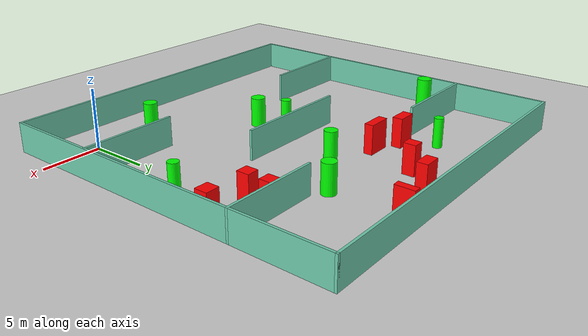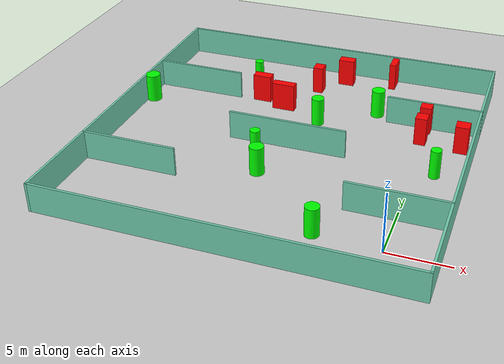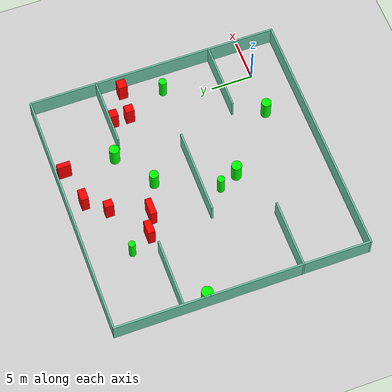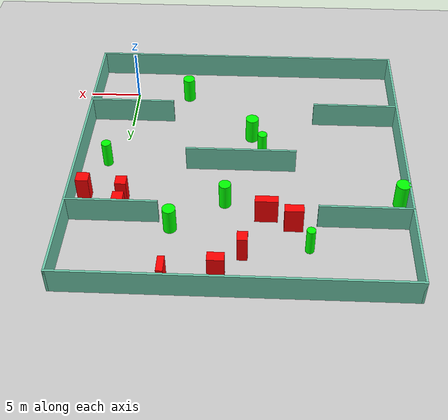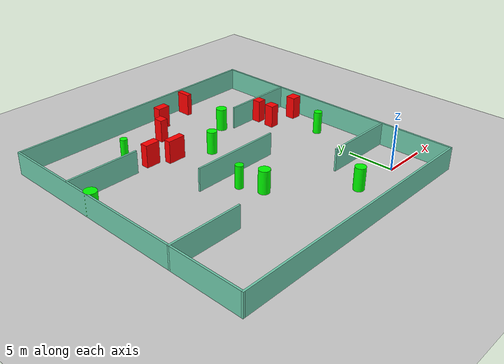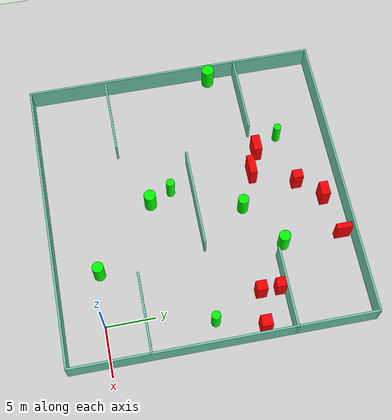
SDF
<sdf version="1.7">
 <world name="default">
  <light name="sun" type="directional">
   <pose>0 0 10 0 -0 0</pose>
   <diffuse>0.8 0.8 0.8 1</diffuse>
   <specular>0.2 0.2 0.2 1</specular>
   <attenuation>
    <range>1000</range>
    <constant>0.9</constant>
    <linear>0.01</linear>
    <quadratic>0.001</quadratic>
   </attenuation>
   <direction>-0.5 0.1 -0.9</direction>
   <spot><inner_angle>0</inner_angle><outer_angle>0</outer_angle><falloff>0</falloff></spot>
  </light>
  <model name="ground_plane">
   <static>1</static>
   <link name="link">
    <collision name="collision">
     <geometry><plane><normal>0 0 1</normal><size>100 100</size></plane></geometry>
     <surface>
      <contact><collide_bitmask>65535</collide_bitmask></contact>
      <friction><ode><mu>100</mu><mu2>50</mu2></ode></friction>
     </surface>
    </collision>
    <visual name="visual">
     <cast_shadows>0</cast_shadows>
     <geometry><plane><normal>0 0 1</normal><size>100 100</size></plane></geometry>
     <material>
      <script><uri>file://media/materials/scripts/gazebo.material</uri><name>Gazebo/Grey</name></script>
     </material>
    </visual>
   </link>
  </model>
  <gravity>0 0 -9.8</gravity>
  <magnetic_field>6e-06 2.3e-05 -4.2e-05</magnetic_field>
  <atmosphere type="adiabatic"/>
  <physics type="ode">
   <max_step_size>0.001</max_step_size>
   <real_time_factor>1</real_time_factor>
   <real_time_update_rate>1000</real_time_update_rate>
  </physics>
  <scene><ambient>0.4 0.4 0.4 1</ambient><background>0.7 0.7 0.7 1</background><shadows>1</shadows></scene>
  <spherical_coordinates>
   <surface_model>EARTH_WGS84</surface_model>
   <latitude_deg>0</latitude_deg>
   <longitude_deg>0</longitude_deg>
   <elevation>0</elevation>
   <heading_deg>0</heading_deg>
  </spherical_coordinates>
  <model name="my_base_walls">
   <link name="Wall_10">
    <collision name="Wall_10_Collision">
     <geometry><box><size>8.2 0.2 2.5</size></box></geometry>
     <pose>0 0 1.25 0 -0 0</pose>
    </collision>
    <visual name="Wall_10_Visual">
     <pose>0 0 1.25 0 -0 0</pose>
     <geometry><box><size>8.2 0.2 2.5</size></box></geometry>
     <material>
      <script><uri>file://media/materials/scripts/gazebo.material</uri><name>Gazebo/Grey</name></script>
      <ambient>0.435294 0.796078 0.67451 1</ambient>
     </material>
     <meta><layer>0</layer></meta>
    </visual>
    <pose>-11 -7 0 0 -0 0</pose>
   </link>
   <link name="Wall_12">
    <collision name="Wall_12_Collision">
     <geometry><box><size>8.2 0.2 2.5</size></box></geometry>
     <pose>0 0 1.25 0 -0 0</pose>
    </collision>
    <visual name="Wall_12_Visual">
     <pose>0 0 1.25 0 -0 0</pose>
     <geometry><box><size>8.2 0.2 2.5</size></box></geometry>
     <material>
      <script><uri>file://media/materials/scripts/gazebo.material</uri><name>Gazebo/Grey</name></script>
      <ambient>0.435294 0.796078 0.67451 1</ambient>
     </material>
     <meta><layer>0</layer></meta>
    </visual>
    <pose>-11 7 0 0 -0 0</pose>
   </link>
   <link name="Wall_14">
    <collision name="Wall_14_Collision">
     <geometry><box><size>8.2 0.2 2.5</size></box></geometry>
     <pose>0 0 1.25 0 -0 0</pose>
    </collision>
    <visual name="Wall_14_Visual">
     <pose>0 0 1.25 0 -0 0</pose>
     <geometry><box><size>8.2 0.2 2.5</size></box></geometry>
     <material>
      <script><uri>file://media/materials/scripts/gazebo.material</uri><name>Gazebo/Grey</name></script>
      <ambient>0.435294 0.796078 0.67451 1</ambient>
     </material>
     <meta><layer>0</layer></meta>
    </visual>
    <pose>11 7 0 0 -0 3.14159</pose>
   </link>
   <link name="Wall_16">
    <collision name="Wall_16_Collision">
     <geometry><box><size>10.2 0.2 2.5</size></box></geometry>
     <pose>0 0 1.25 0 -0 0</pose>
    </collision>
    <visual name="Wall_16_Visual">
     <pose>0 0 1.25 0 -0 0</pose>
     <geometry><box><size>10.2 0.2 2.5</size></box></geometry>
     <material>
      <script><uri>file://media/materials/scripts/gazebo.material</uri><name>Gazebo/Grey</name></script>
      <ambient>0.435294 0.796078 0.67451 1</ambient>
     </material>
     <meta><layer>0</layer></meta>
    </visual>
    <pose>0 0 0 0 -0 3.14159</pose>
   </link>
   <link name="Wall_2">
    <collision name="Wall_2_Collision">
     <geometry><box><size>30.2 0.2 2.5</size></box></geometry>
     <pose>0 0 1.25 0 -0 0</pose>
    </collision>
    <visual name="Wall_2_Visual">
     <pose>0 0 1.25 0 -0 0</pose>
     <geometry><box><size>30.2 0.2 2.5</size></box></geometry>
     <material>
      <script><uri>file://media/materials/scripts/gazebo.material</uri><name>Gazebo/Grey</name></script>
      <ambient>0.435294 0.796078 0.67451 1</ambient>
     </material>
     <meta><layer>0</layer></meta>
    </visual>
    <pose>0 -15 0 0 -0 3.14159</pose>
   </link>
   <link name="Wall_3">
    <collision name="Wall_3_Collision">
     <geometry><box><size>30.2 0.2 2.5</size></box></geometry>
     <pose>0 0 1.25 0 -0 0</pose>
    </collision>
    <visual name="Wall_3_Visual">
     <pose>0 0 1.25 0 -0 0</pose>
     <geometry><box><size>30.2 0.2 2.5</size></box></geometry>
     <material>
      <script><uri>file://media/materials/scripts/gazebo.material</uri><name>Gazebo/Grey</name></script>
      <ambient>0.435294 0.796078 0.67451 1</ambient>
     </material>
     <meta><layer>0</layer></meta>
    </visual>
    <pose>-15 0 0 0 -0 1.5708</pose>
   </link>
   <link name="Wall_4">
    <collision name="Wall_4_Collision">
     <geometry><box><size>30.2 0.2 2.5</size></box></geometry>
     <pose>0 0 1.25 0 -0 0</pose>
    </collision>
    <visual name="Wall_4_Visual">
     <pose>0 0 1.25 0 -0 0</pose>
     <geometry><box><size>30.2 0.2 2.5</size></box></geometry>
     <material>
      <script><uri>file://media/materials/scripts/gazebo.material</uri><name>Gazebo/Grey</name></script>
      <ambient>0.435294 0.796078 0.67451 1</ambient>
     </material>
     <meta><layer>0</layer></meta>
    </visual>
    <pose>0 15 0 0 -0 0</pose>
   </link>
   <link name="Wall_6">
    <collision name="Wall_6_Collision">
     <geometry><box><size>30.2 0.2 2.5</size></box></geometry>
     <pose>0 0 1.25 0 -0 0</pose>
    </collision>
    <visual name="Wall_6_Visual">
     <pose>0 0 1.25 0 -0 0</pose>
     <geometry><box><size>30.2 0.2 2.5</size></box></geometry>
     <material>
      <script><uri>file://media/materials/scripts/gazebo.material</uri><name>Gazebo/Grey</name></script>
      <ambient>0.435294 0.796078 0.67451 1</ambient>
     </material>
     <meta><layer>0</layer></meta>
    </visual>
    <pose>15 0 0 0 -0 1.5708</pose>
   </link>
   <link name="Wall_8">
    <collision name="Wall_8_Collision">
     <geometry><box><size>8.2 0.2 2.5</size></box></geometry>
     <pose>0 0 1.25 0 -0 0</pose>
    </collision>
    <visual name="Wall_8_Visual">
     <pose>0 0 1.25 0 -0 0</pose>
     <geometry><box><size>8.2 0.2 2.5</size></box></geometry>
     <material>
      <script><uri>file://media/materials/scripts/gazebo.material</uri><name>Gazebo/Grey</name></script>
      <ambient>0.435294 0.796078 0.67451 1</ambient>
     </material>
     <meta><layer>0</layer></meta>
    </visual>
    <pose>11 -7 0 0 -0 3.14159</pose>
   </link>
   <static>1</static>
   <pose>-11 11 0 0 -0 0</pose>
  </model>
  <model name="cylinder1">
   <static>1</static>
   <link name="link">
    <inertial>
     <mass>1</mass>
     <inertia><ixx>0.5</ixx><ixy>0</ixy><ixz>0</ixz><iyy>0.5</iyy><iyz>0</iyz><izz>1</izz></inertia>
    </inertial>
    <collision name="collision">
     <geometry><cylinder><radius>0.6533027337788476</radius><length>2.5</length></cylinder></geometry>
    </collision>
    <visual name="visual">
     <geometry><cylinder><radius>0.6533027337788476</radius><length>2.5</length></cylinder></geometry>
     <material>
      <ambient>0 1 0 1</ambient>
      <diffuse>0 1 0 1</diffuse>
      <specular>0.1 0.1 0.1 1</specular>
      <emissive>0 0 0 0</emissive>
     </material>
    </visual>
   </link>
   <pose>-25.448205058486206 15.086655101425148 1.25 0 0 0</pose>
  </model>
  <model name="cylinder2">
   <static>1</static>
   <link name="link">
    <inertial>
     <mass>1</mass>
     <inertia><ixx>0.5</ixx><ixy>0</ixy><ixz>0</ixz><iyy>0.5</iyy><iyz>0</iyz><izz>1</izz></inertia>
    </inertial>
    <collision name="collision">
     <geometry><cylinder><radius>0.6058928162535919</radius><length>2.5</length></cylinder></geometry>
    </collision>
    <visual name="visual">
     <geometry><cylinder><radius>0.6058928162535919</radius><length>2.5</length></cylinder></geometry>
     <material>
      <ambient>0 1 0 1</ambient>
      <diffuse>0 1 0 1</diffuse>
      <specular>0.1 0.1 0.1 1</specular>
      <emissive>0 0 0 0</emissive>
     </material>
    </visual>
   </link>
   <pose>-11.926054605159825 6.486087776040616 1.25 0 0 0</pose>
  </model>
  <model name="cylinder3">
   <static>1</static>
   <link name="link">
    <inertial>
     <mass>1</mass>
     <inertia><ixx>0.5</ixx><ixy>0</ixy><ixz>0</ixz><iyy>0.5</iyy><iyz>0</iyz><izz>1</izz></inertia>
    </inertial>
    <collision name="collision">
     <geometry><cylinder><radius>0.58334786820027</radius><length>2.5</length></cylinder></geometry>
    </collision>
    <visual name="visual">
     <geometry><cylinder><radius>0.58334786820027</radius><length>2.5</length></cylinder></geometry>
     <material>
      <ambient>0 1 0 1</ambient>
      <diffuse>0 1 0 1</diffuse>
      <specular>0.1 0.1 0.1 1</specular>
      <emissive>0 0 0 0</emissive>
     </material>
    </visual>
   </link>
   <pose>-5.138920749601841 18.866109907880563 1.25 0 0 0</pose>
  </model>
  <model name="cylinder4">
   <static>1</static>
   <link name="link">
    <inertial>
     <mass>1</mass>
     <inertia><ixx>0.5</ixx><ixy>0</ixy><ixz>0</ixz><iyy>0.5</iyy><iyz>0</iyz><izz>1</izz></inertia>
    </inertial>
    <collision name="collision">
     <geometry><cylinder><radius>0.5744135334278461</radius><length>2.5</length></cylinder></geometry>
    </collision>
    <visual name="visual">
     <geometry><cylinder><radius>0.5744135334278461</radius><length>2.5</length></cylinder></geometry>
     <material>
      <ambient>0 1 0 1</ambient>
      <diffuse>0 1 0 1</diffuse>
      <specular>0.1 0.1 0.1 1</specular>
      <emissive>0 0 0 0</emissive>
     </material>
    </visual>
   </link>
   <pose>-5.302772853115062 0.2668515234458573 1.25 0 0 0</pose>
  </model>
  <model name="cylinder5">
   <static>1</static>
   <link name="link">
    <inertial>
     <mass>1</mass>
     <inertia><ixx>0.5</ixx><ixy>0</ixy><ixz>0</ixz><iyy>0.5</iyy><iyz>0</iyz><izz>1</izz></inertia>
    </inertial>
    <collision name="collision">
     <geometry><cylinder><radius>0.5399190083976072</radius><length>2.5</length></cylinder></geometry>
    </collision>
    <visual name="visual">
     <geometry><cylinder><radius>0.5399190083976072</radius><length>2.5</length></cylinder></geometry>
     <material>
      <ambient>0 1 0 1</ambient>
      <diffuse>0 1 0 1</diffuse>
      <specular>0.1 0.1 0.1 1</specular>
      <emissive>0 0 0 0</emissive>
     </material>
    </visual>
   </link>
   <pose>-9.763584516298916 15.688539947157182 1.25 0 0 0</pose>
  </model>
  <model name="cylinder6">
   <static>1</static>
   <link name="link">
    <inertial>
     <mass>1</mass>
     <inertia><ixx>0.5</ixx><ixy>0</ixy><ixz>0</ixz><iyy>0.5</iyy><iyz>0</iyz><izz>1</izz></inertia>
    </inertial>
    <collision name="collision">
     <geometry><cylinder><radius>0.3884676934568455</radius><length>2.5</length></cylinder></geometry>
    </collision>
    <visual name="visual">
     <geometry><cylinder><radius>0.3884676934568455</radius><length>2.5</length></cylinder></geometry>
     <material>
      <ambient>0 1 0 1</ambient>
      <diffuse>0 1 0 1</diffuse>
      <specular>0.1 0.1 0.1 1</specular>
      <emissive>0 0 0 0</emissive>
     </material>
    </visual>
   </link>
   <pose>-17.194579776220706 20.879874217648407 1.25 0 0 0</pose>
  </model>
  <model name="cylinder7">
   <static>1</static>
   <link name="link">
    <inertial>
     <mass>1</mass>
     <inertia><ixx>0.5</ixx><ixy>0</ixy><ixz>0</ixz><iyy>0.5</iyy><iyz>0</iyz><izz>1</izz></inertia>
    </inertial>
    <collision name="collision">
     <geometry><cylinder><radius>0.4287755350695039</radius><length>2.5</length></cylinder></geometry>
    </collision>
    <visual name="visual">
     <geometry><cylinder><radius>0.4287755350695039</radius><length>2.5</length></cylinder></geometry>
     <material>
      <ambient>0 1 0 1</ambient>
      <diffuse>0 1 0 1</diffuse>
      <specular>0.1 0.1 0.1 1</specular>
      <emissive>0 0 0 0</emissive>
     </material>
    </visual>
   </link>
   <pose>-12.940253441555752 8.763392495671123 1.25 0 0 0</pose>
  </model>
  <model name="cylinder8">
   <static>1</static>
   <link name="link">
    <inertial>
     <mass>1</mass>
     <inertia><ixx>0.5</ixx><ixy>0</ixy><ixz>0</ixz><iyy>0.5</iyy><iyz>0</iyz><izz>1</izz></inertia>
    </inertial>
    <collision name="collision">
     <geometry><cylinder><radius>0.44759128488542066</radius><length>2.5</length></cylinder></geometry>
    </collision>
    <visual name="visual">
     <geometry><cylinder><radius>0.44759128488542066</radius><length>2.5</length></cylinder></geometry>
     <material>
      <ambient>0 1 0 1</ambient>
      <diffuse>0 1 0 1</diffuse>
      <specular>0.1 0.1 0.1 1</specular>
      <emissive>0 0 0 0</emissive>
     </material>
    </visual>
   </link>
   <pose>1.5568881610158911 10.612946044833887 1.25 0 0 0</pose>
  </model>
  <model name="box1">
   <static>1</static>
   <link name="link">
    <inertial>
     <mass>1</mass>
     <inertia><ixx>0.083</ixx><ixy>0</ixy><ixz>0</ixz><iyy>0.083</iyy><iyz>0</iyz><izz>0.083</izz></inertia>
    </inertial>
    <collision name="collision">
     <geometry><box><size>0.9058664279520423 1.0232779019637794 2.5</size></box></geometry>
    </collision>
    <visual name="visual">
     <geometry><box><size>0.9058664279520423 1.0232779019637794 2.5</size></box></geometry>
     <material>
      <ambient>1 0 0 1</ambient>
      <diffuse>1 0 0 1</diffuse>
      <specular>0.1 0.1 0.1 1</specular>
      <emissive>0 0 0 0</emissive>
     </material>
    </visual>
    <sensor name="my_contact" type="contact">
     <contact><collision>box_collision</collision><topic>__default_topic__</topic></contact>
    </sensor>
   </link>
   <pose>-11.509161595123036 21.70869587742245 1.25 0 0 0</pose>
  </model>
  <model name="box2">
   <static>1</static>
   <link name="link">
    <inertial>
     <mass>1</mass>
     <inertia><ixx>0.083</ixx><ixy>0</ixy><ixz>0</ixz><iyy>0.083</iyy><iyz>0</iyz><izz>0.083</izz></inertia>
    </inertial>
    <collision name="collision">
     <geometry><box><size>1.440560110507452 0.8914409115062729 2.5</size></box></geometry>
    </collision>
    <visual name="visual">
     <geometry><box><size>1.440560110507452 0.8914409115062729 2.5</size></box></geometry>
     <material>
      <ambient>1 0 0 1</ambient>
      <diffuse>1 0 0 1</diffuse>
      <specular>0.1 0.1 0.1 1</specular>
      <emissive>0 0 0 0</emissive>
     </material>
    </visual>
    <sensor name="my_contact" type="contact">
     <contact><collision>box_collision</collision><topic>__default_topic__</topic></contact>
    </sensor>
   </link>
   <pose>-9.43945123372964 24.01085801498678 1.25 0 0 0</pose>
  </model>
  <model name="box3">
   <static>1</static>
   <link name="link">
    <inertial>
     <mass>1</mass>
     <inertia><ixx>0.083</ixx><ixy>0</ixy><ixz>0</ixz><iyy>0.083</iyy><iyz>0</iyz><izz>0.083</izz></inertia>
    </inertial>
    <collision name="collision">
     <geometry><box><size>0.5837198906968059 1.5793066356258032 2.5</size></box></geometry>
    </collision>
    <visual name="visual">
     <geometry><box><size>0.5837198906968059 1.5793066356258032 2.5</size></box></geometry>
     <material>
      <ambient>1 0 0 1</ambient>
      <diffuse>1 0 0 1</diffuse>
      <specular>0.1 0.1 0.1 1</specular>
      <emissive>0 0 0 0</emissive>
     </material>
    </visual>
    <sensor name="my_contact" type="contact">
     <contact><collision>box_collision</collision><topic>__default_topic__</topic></contact>
    </sensor>
   </link>
   <pose>-5.0926078693153105 24.919518783954064 1.25 0 0 0</pose>
  </model>
  <model name="box4">
   <static>1</static>
   <link name="link">
    <inertial>
     <mass>1</mass>
     <inertia><ixx>0.083</ixx><ixy>0</ixy><ixz>0</ixz><iyy>0.083</iyy><iyz>0</iyz><izz>0.083</izz></inertia>
    </inertial>
    <collision name="collision">
     <geometry><box><size>1.6590662975299324 0.8477846808737197 2.5</size></box></geometry>
    </collision>
    <visual name="visual">
     <geometry><box><size>1.6590662975299324 0.8477846808737197 2.5</size></box></geometry>
     <material>
      <ambient>1 0 0 1</ambient>
      <diffuse>1 0 0 1</diffuse>
      <specular>0.1 0.1 0.1 1</specular>
      <emissive>0 0 0 0</emissive>
     </material>
    </visual>
    <sensor name="my_contact" type="contact">
     <contact><collision>box_collision</collision><topic>__default_topic__</topic></contact>
    </sensor>
   </link>
   <pose>-15.83622050482975 18.367426062721318 1.25 0 0 0</pose>
  </model>
  <model name="box5">
   <static>1</static>
   <link name="link">
    <inertial>
     <mass>1</mass>
     <inertia><ixx>0.083</ixx><ixy>0</ixy><ixz>0</ixz><iyy>0.083</iyy><iyz>0</iyz><izz>0.083</izz></inertia>
    </inertial>
    <collision name="collision">
     <geometry><box><size>2.036042508320442 0.7411712338610346 2.5</size></box></geometry>
    </collision>
    <visual name="visual">
     <geometry><box><size>2.036042508320442 0.7411712338610346 2.5</size></box></geometry>
     <material>
      <ambient>1 0 0 1</ambient>
      <diffuse>1 0 0 1</diffuse>
      <specular>0.1 0.1 0.1 1</specular>
      <emissive>0 0 0 0</emissive>
     </material>
    </visual>
    <sensor name="my_contact" type="contact">
     <contact><collision>box_collision</collision><topic>__default_topic__</topic></contact>
    </sensor>
   </link>
   <pose>-13.458882704324783 17.357726399131284 1.25 0 0 0</pose>
  </model>
  <model name="box6">
   <static>1</static>
   <link name="link">
    <inertial>
     <mass>1</mass>
     <inertia><ixx>0.083</ixx><ixy>0</ixy><ixz>0</ixz><iyy>0.083</iyy><iyz>0</iyz><izz>0.083</izz></inertia>
    </inertial>
    <collision name="collision">
     <geometry><box><size>0.9888689331743823 1.0504984001755082 2.5</size></box></geometry>
    </collision>
    <visual name="visual">
     <geometry><box><size>0.9888689331743823 1.0504984001755082 2.5</size></box></geometry>
     <material>
      <ambient>1 0 0 1</ambient>
      <diffuse>1 0 0 1</diffuse>
      <specular>0.1 0.1 0.1 1</specular>
      <emissive>0 0 0 0</emissive>
     </material>
    </visual>
    <sensor name="my_contact" type="contact">
     <contact><collision>box_collision</collision><topic>__default_topic__</topic></contact>
    </sensor>
   </link>
   <pose>-0.5533224388149982 15.50640706587913 1.25 0 0 0</pose>
  </model>
  <model name="box7">
   <static>1</static>
   <link name="link">
    <inertial>
     <mass>1</mass>
     <inertia><ixx>0.083</ixx><ixy>0</ixy><ixz>0</ixz><iyy>0.083</iyy><iyz>0</iyz><izz>0.083</izz></inertia>
    </inertial>
    <collision name="collision">
     <geometry><box><size>1.1457917570068976 1.0656278359289546 2.5</size></box></geometry>
    </collision>
    <visual name="visual">
     <geometry><box><size>1.1457917570068976 1.0656278359289546 2.5</size></box></geometry>
     <material>
      <ambient>1 0 0 1</ambient>
      <diffuse>1 0 0 1</diffuse>
      <specular>0.1 0.1 0.1 1</specular>
      <emissive>0 0 0 0</emissive>
     </material>
    </visual>
    <sensor name="my_contact" type="contact">
     <contact><collision>box_collision</collision><topic>__default_topic__</topic></contact>
    </sensor>
   </link>
   <pose>2.9165378589765645 15.216448716368973 1.25 0 0 0</pose>
  </model>
  <model name="box8">
   <static>1</static>
   <link name="link">
    <inertial>
     <mass>1</mass>
     <inertia><ixx>0.083</ixx><ixy>0</ixy><ixz>0</ixz><iyy>0.083</iyy><iyz>0</iyz><izz>0.083</izz></inertia>
    </inertial>
    <collision name="collision">
     <geometry><box><size>0.9794610439237184 0.9610366932274079 2.5</size></box></geometry>
    </collision>
    <visual name="visual">
     <geometry><box><size>0.9794610439237184 0.9610366932274079 2.5</size></box></geometry>
     <material>
      <ambient>1 0 0 1</ambient>
      <diffuse>1 0 0 1</diffuse>
      <specular>0.1 0.1 0.1 1</specular>
      <emissive>0 0 0 0</emissive>
     </material>
    </visual>
    <sensor name="my_contact" type="contact">
     <contact><collision>box_collision</collision><topic>__default_topic__</topic></contact>
    </sensor>
   </link>
   <pose>-0.5434822265775097 17.42220251967606 1.25 0 0 0</pose>
  </model>
 </world>
</sdf>
